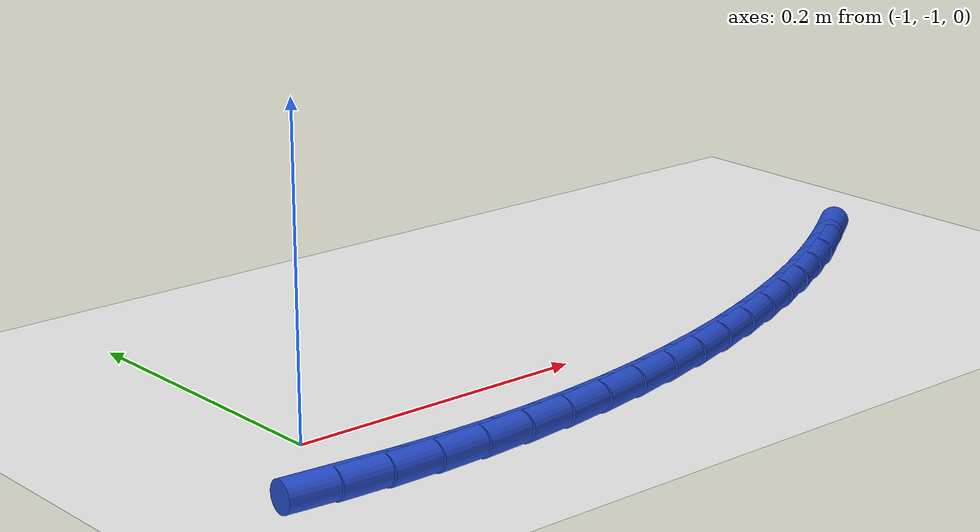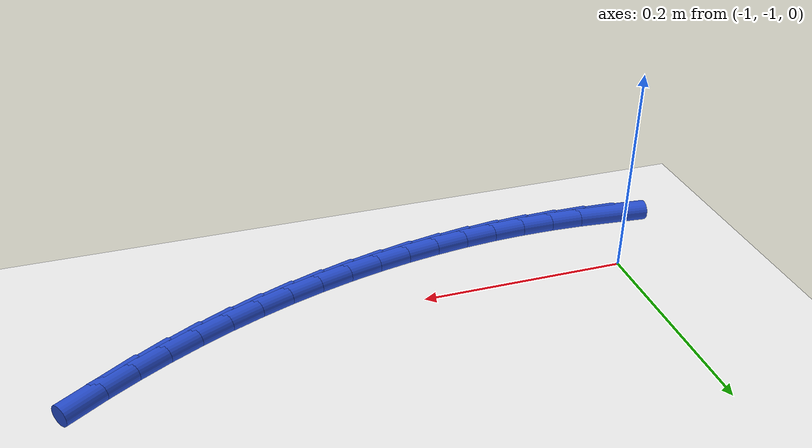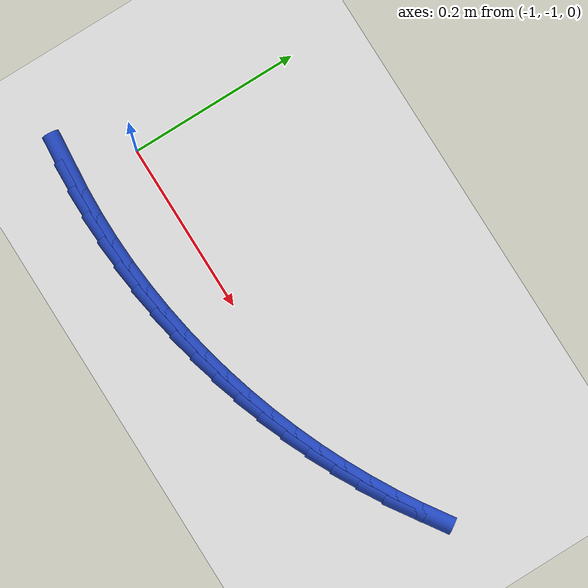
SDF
<sdf version="1.6">
 <world name="default">
  <model name="ground_plane">
   <static>1</static>
   <link name="link">
    <collision name="collision">
     <geometry><plane><normal>0 0 1</normal><size>100 100</size></plane></geometry>
     <surface><friction><ode><mu>100</mu><mu2>50</mu2></ode></friction></surface>
    </collision>
    <visual name="visual">
     <cast_shadows>0</cast_shadows>
     <geometry><plane><normal>0 0 1</normal><size>100 100</size></plane></geometry>
     <material>
      <script><uri>file://media/materials/scripts/gazebo.material</uri><name>Gazebo/WhiteGlow</name></script>
     </material>
    </visual>
   </link>
  </model>
  <model name="line">
   <link name="link_158">
    <pose>-1.0247671750393579 -1.0736733399360774 0.01 0 1.57 -0.0874009356507075</pose>
    <collision name="collision">
     <geometry><cylinder><radius>0.01</radius><length>0.08</length></cylinder></geometry>
    </collision>
    <visual name="visual">
     <material>
      <script><name>Gazebo/Blue</name><uri>file://media/materials/scripts/gazebo.material</uri></script>
     </material>
     <geometry><cylinder><radius>0.01</radius><length>0.08</length></cylinder></geometry>
    </visual>
   </link>
   <link name="link_159">
    <pose>-0.9929538488947914 -1.0764609561537701 0.01 0 1.57 -0.04368289948846643</pose>
    <collision name="collision">
     <geometry><cylinder><radius>0.01</radius><length>0.08</length></cylinder></geometry>
    </collision>
    <visual name="visual">
     <material>
      <script><name>Gazebo/Blue</name><uri>file://media/materials/scripts/gazebo.material</uri></script>
     </material>
     <geometry><cylinder><radius>0.01</radius><length>0.08</length></cylinder></geometry>
    </visual>
   </link>
   <link name="link_160">
    <pose>-0.9610371843957445 -1.0778560560885644 0.01 0 1.57 -0.0008380886207388909</pose>
    <collision name="collision">
     <geometry><cylinder><radius>0.01</radius><length>0.08</length></cylinder></geometry>
    </collision>
    <visual name="visual">
     <material>
      <script><name>Gazebo/Blue</name><uri>file://media/materials/scripts/gazebo.material</uri></script>
     </material>
     <geometry><cylinder><radius>0.01</radius><length>0.08</length></cylinder></geometry>
    </visual>
   </link>
   <link name="link_161">
    <pose>-0.9290690339624715 -1.0778828482379414 0.01 0 1.57 0.04118403340535659</pose>
    <collision name="collision">
     <geometry><cylinder><radius>0.01</radius><length>0.08</length></cylinder></geometry>
    </collision>
    <visual name="visual">
     <material>
      <script><name>Gazebo/Blue</name><uri>file://media/materials/scripts/gazebo.material</uri></script>
     </material>
     <geometry><cylinder><radius>0.01</radius><length>0.08</length></cylinder></geometry>
    </visual>
   </link>
   <link name="link_162">
    <pose>-0.8971012500152273 -1.076565541099383 0.01 0 1.57 0.0824431688421627</pose>
    <collision name="collision">
     <geometry><cylinder><radius>0.01</radius><length>0.08</length></cylinder></geometry>
    </collision>
    <visual name="visual">
     <material>
      <script><name>Gazebo/Blue</name><uri>file://media/materials/scripts/gazebo.material</uri></script>
     </material>
     <geometry><cylinder><radius>0.01</radius><length>0.08</length></cylinder></geometry>
    </visual>
   </link>
   <link name="link_163">
    <pose>-0.8651856849742662 -1.0739283431703712 0.01 0 1.57 0.12300662671594531</pose>
    <collision name="collision">
     <geometry><cylinder><radius>0.01</radius><length>0.08</length></cylinder></geometry>
    </collision>
    <visual name="visual">
     <material>
      <script><name>Gazebo/Blue</name><uri>file://media/materials/scripts/gazebo.material</uri></script>
     </material>
     <geometry><cylinder><radius>0.01</radius><length>0.08</length></cylinder></geometry>
    </visual>
   </link>
   <link name="link_164">
    <pose>-0.8333741912598422 -1.0699954629483863 0.01 0 1.57 0.16294794937993848</pose>
    <collision name="collision">
     <geometry><cylinder><radius>0.01</radius><length>0.08</length></cylinder></geometry>
    </collision>
    <visual name="visual">
     <material>
      <script><name>Gazebo/Blue</name><uri>file://media/materials/scripts/gazebo.material</uri></script>
     </material>
     <geometry><cylinder><radius>0.01</radius><length>0.08</length></cylinder></geometry>
    </visual>
   </link>
   <link name="link_165">
    <pose>-0.8017186212922113 -1.0647911089309108 0.01 0 1.57 0.20234572935290873</pose>
    <collision name="collision">
     <geometry><cylinder><radius>0.01</radius><length>0.08</length></cylinder></geometry>
    </collision>
    <visual name="visual">
     <material>
      <script><name>Gazebo/Blue</name><uri>file://media/materials/scripts/gazebo.material</uri></script>
     </material>
     <geometry><cylinder><radius>0.01</radius><length>0.08</length></cylinder></geometry>
    </visual>
   </link>
   <link name="link_166">
    <pose>-0.7702708274916276 -1.0583394896154263 0.01 0 1.57 0.241282609641058</pose>
    <collision name="collision">
     <geometry><cylinder><radius>0.01</radius><length>0.08</length></cylinder></geometry>
    </collision>
    <visual name="visual">
     <material>
      <script><name>Gazebo/Blue</name><uri>file://media/materials/scripts/gazebo.material</uri></script>
     </material>
     <geometry><cylinder><radius>0.01</radius><length>0.08</length></cylinder></geometry>
    </visual>
   </link>
   <link name="link_167">
    <pose>-0.7390826622783454 -1.050664813499414 0.01 0 1.57 0.2798444525112158</pose>
    <collision name="collision">
     <geometry><cylinder><radius>0.01</radius><length>0.08</length></cylinder></geometry>
    </collision>
    <visual name="visual">
     <material>
      <script><name>Gazebo/Blue</name><uri>file://media/materials/scripts/gazebo.material</uri></script>
     </material>
     <geometry><cylinder><radius>0.01</radius><length>0.08</length></cylinder></geometry>
    </visual>
   </link>
   <link name="link_168">
    <pose>-0.7082059780726193 -1.0417912890803556 0.01 0 1.57 0.318119656093629</pose>
    <collision name="collision">
     <geometry><cylinder><radius>0.01</radius><length>0.08</length></cylinder></geometry>
    </collision>
    <visual name="visual">
     <material>
      <script><name>Gazebo/Blue</name><uri>file://media/materials/scripts/gazebo.material</uri></script>
     </material>
     <geometry><cylinder><radius>0.01</radius><length>0.08</length></cylinder></geometry>
    </visual>
   </link>
   <link name="link_169">
    <pose>-0.677692627294704 -1.0317431248557327 0.01 0 1.57 0.35619859458423875</pose>
    <collision name="collision">
     <geometry><cylinder><radius>0.01</radius><length>0.08</length></cylinder></geometry>
    </collision>
    <visual name="visual">
     <material>
      <script><name>Gazebo/Blue</name><uri>file://media/materials/scripts/gazebo.material</uri></script>
     </material>
     <geometry><cylinder><radius>0.01</radius><length>0.08</length></cylinder></geometry>
    </visual>
   </link>
   <link name="link_170">
    <pose>-0.6475944623648533 -1.020544529323026 0.01 0 1.57 0.3941827308634817</pose>
    <collision name="collision">
     <geometry><cylinder><radius>0.01</radius><length>0.08</length></cylinder></geometry>
    </collision>
    <visual name="visual">
     <material>
      <script><name>Gazebo/Blue</name><uri>file://media/materials/scripts/gazebo.material</uri></script>
     </material>
     <geometry><cylinder><radius>0.01</radius><length>0.08</length></cylinder></geometry>
    </visual>
   </link>
   <link name="link_171">
    <pose>-0.6179633773687094 -1.0082193954959884 0.01 0 1.57 0.43225436680415347</pose>
    <collision name="collision">
     <geometry><cylinder><radius>0.01</radius><length>0.08</length></cylinder></geometry>
    </collision>
    <visual name="visual">
     <material>
      <script><name>Gazebo/Blue</name><uri>file://media/materials/scripts/gazebo.material</uri></script>
     </material>
     <geometry><cylinder><radius>0.01</radius><length>0.08</length></cylinder></geometry>
    </visual>
   </link>
   <link name="link_172">
    <pose>-0.5888516601065892 -0.9947886352429288 0.01 0 1.57 0.4705526410146941</pose>
    <collision name="collision">
     <geometry><cylinder><radius>0.01</radius><length>0.08</length></cylinder></geometry>
    </collision>
    <visual name="visual">
     <material>
      <script><name>Gazebo/Blue</name><uri>file://media/materials/scripts/gazebo.material</uri></script>
     </material>
     <geometry><cylinder><radius>0.01</radius><length>0.08</length></cylinder></geometry>
    </visual>
   </link>
   <link name="link_173">
    <pose>-0.560311815070275 -0.980271519678574 0.01 0 1.57 0.509166251014288</pose>
    <collision name="collision">
     <geometry><cylinder><radius>0.01</radius><length>0.08</length></cylinder></geometry>
    </collision>
    <visual name="visual">
     <material>
      <script><name>Gazebo/Blue</name><uri>file://media/materials/scripts/gazebo.material</uri></script>
     </material>
     <geometry><cylinder><radius>0.01</radius><length>0.08</length></cylinder></geometry>
    </visual>
   </link>
   <link name="link_174">
    <pose>-0.5323963490041438 -0.9646873028613522 0.01 0 1.57 0.548182179735774</pose>
    <collision name="collision">
     <geometry><cylinder><radius>0.01</radius><length>0.08</length></cylinder></geometry>
    </collision>
    <visual name="visual">
     <material>
      <script><name>Gazebo/Blue</name><uri>file://media/materials/scripts/gazebo.material</uri></script>
     </material>
     <geometry><cylinder><radius>0.01</radius><length>0.08</length></cylinder></geometry>
    </visual>
   </link>
   <link name="link_175">
    <pose>-0.5051577686525726 -0.9480552388496922 0.01 0 1.57 0.5876856275205995</pose>
    <collision name="collision">
     <geometry><cylinder><radius>0.01</radius><length>0.08</length></cylinder></geometry>
    </collision>
    <visual name="visual">
     <material>
      <script><name>Gazebo/Blue</name><uri>file://media/materials/scripts/gazebo.material</uri></script>
     </material>
     <geometry><cylinder><radius>0.01</radius><length>0.08</length></cylinder></geometry>
    </visual>
   </link>
  </model>
 </world>
</sdf>
